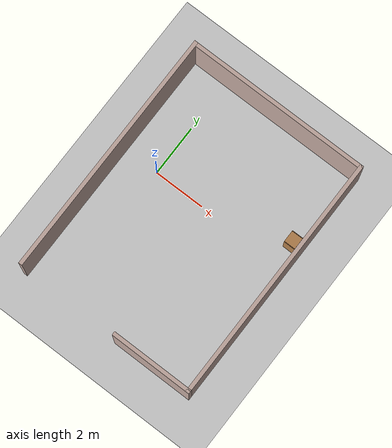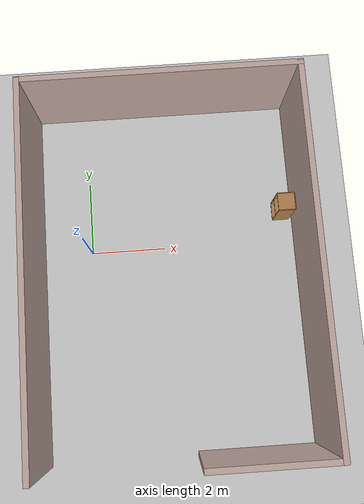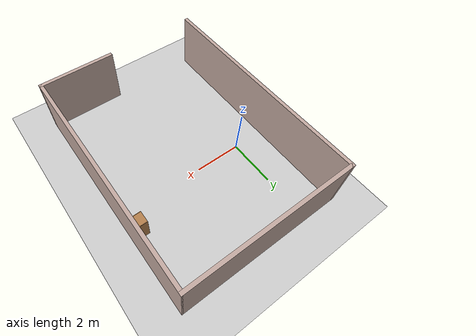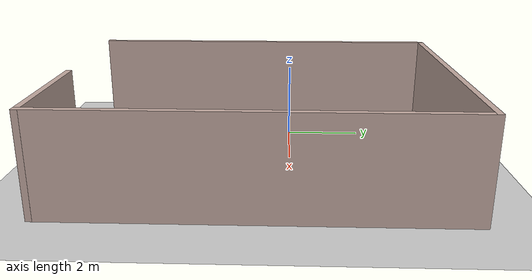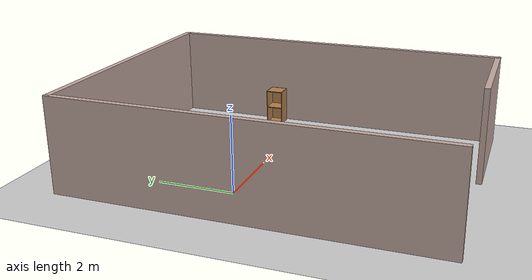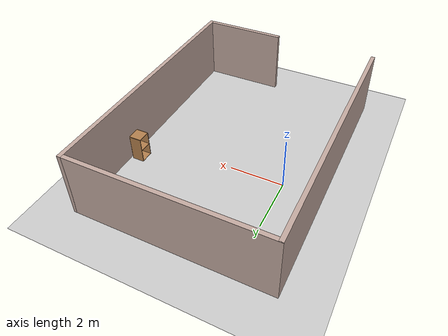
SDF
<sdf version="1.7">
 <world name="default">
  <light name="sun" type="directional">
   <pose>0 0 10 0 -0 0</pose>
   <diffuse>0.8 0.8 0.8 1</diffuse>
   <specular>0.2 0.2 0.2 1</specular>
   <attenuation>
    <range>1000</range>
    <constant>0.9</constant>
    <linear>0.01</linear>
    <quadratic>0.001</quadratic>
   </attenuation>
   <direction>-0.5 0.1 -0.9</direction>
   <spot><inner_angle>0</inner_angle><outer_angle>0</outer_angle><falloff>0</falloff></spot>
  </light>
  <model name="ground_plane">
   <static>1</static>
   <link name="link">
    <collision name="collision">
     <geometry><plane><normal>0 0 1</normal><size>100 100</size></plane></geometry>
     <surface>
      <contact><collide_bitmask>65535</collide_bitmask></contact>
      <friction><ode><mu>100</mu><mu2>50</mu2></ode></friction>
     </surface>
    </collision>
    <visual name="visual">
     <cast_shadows>0</cast_shadows>
     <geometry><plane><normal>0 0 1</normal><size>100 100</size></plane></geometry>
     <material>
      <script><uri>file://media/materials/scripts/gazebo.material</uri><name>Gazebo/Grey</name></script>
     </material>
    </visual>
   </link>
  </model>
  <gravity>0 0 -9.8</gravity>
  <magnetic_field>6e-06 2.3e-05 -4.2e-05</magnetic_field>
  <atmosphere type="adiabatic"/>
  <physics type="ode">
   <max_step_size>0.001</max_step_size>
   <real_time_factor>1</real_time_factor>
   <real_time_update_rate>500</real_time_update_rate>
  </physics>
  <scene><ambient>0.4 0.4 0.4 1</ambient><background>0.7 0.7 0.7 1</background><shadows>1</shadows></scene>
  <audio><device>default</device></audio>
  <spherical_coordinates>
   <surface_model>EARTH_WGS84</surface_model>
   <latitude_deg>0</latitude_deg>
   <longitude_deg>0</longitude_deg>
   <elevation>0</elevation>
   <heading_deg>0</heading_deg>
  </spherical_coordinates>
  <model name="Untitled">
   <pose>2.15235 -0.777333 0 0 -0 0</pose>
   <link name="Wall_5">
    <collision name="Wall_5_Collision">
     <geometry><box><size>9.75 0.15 2.5</size></box></geometry>
     <pose>0 0 1.25 0 -0 0</pose>
    </collision>
    <visual name="Wall_5_Visual">
     <pose>0 0 1.25 0 -0 0</pose>
     <geometry><box><size>9.75 0.15 2.5</size></box></geometry>
     <material>
      <script><uri>file://media/materials/scripts/gazebo.material</uri><name>Gazebo/Grey</name></script>
      <ambient>0.760784 0.662745 0.627451 1</ambient>
     </material>
     <meta><layer>0</layer></meta>
    </visual>
    <pose>-3.55 -0 0 0 -0 1.5708</pose>
   </link>
   <link name="Wall_7">
    <collision name="Wall_7_Collision">
     <geometry><box><size>7.25 0.15 2.5</size></box></geometry>
     <pose>0 0 1.25 0 -0 0</pose>
    </collision>
    <visual name="Wall_7_Visual">
     <pose>0 0 1.25 0 -0 0</pose>
     <geometry><box><size>7.25 0.15 2.5</size></box></geometry>
     <material>
      <script><uri>file://media/materials/scripts/gazebo.material</uri><name>Gazebo/Grey</name></script>
      <ambient>0.760784 0.662745 0.627451 1</ambient>
     </material>
     <meta><layer>0</layer></meta>
    </visual>
    <pose>-0 4.8 0 0 -0 0</pose>
   </link>
   <link name="Wall_8">
    <collision name="Wall_8_Collision">
     <geometry><box><size>9.75 0.15 2.5</size></box></geometry>
     <pose>0 0 1.25 0 -0 0</pose>
    </collision>
    <visual name="Wall_8_Visual">
     <pose>0 0 1.25 0 -0 0</pose>
     <geometry><box><size>9.75 0.15 2.5</size></box></geometry>
     <material>
      <script><uri>file://media/materials/scripts/gazebo.material</uri><name>Gazebo/Grey</name></script>
      <ambient>0.760784 0.662745 0.627451 1</ambient>
     </material>
     <meta><layer>0</layer></meta>
    </visual>
    <pose>3.55 -0 0 0 -0 -1.5708</pose>
   </link>
   <link name="Wall_9">
    <collision name="Wall_9_Collision">
     <geometry><box><size>3.25 0.15 2.5</size></box></geometry>
     <pose>0 0 1.25 0 -0 0</pose>
    </collision>
    <visual name="Wall_9_Visual">
     <pose>0 0 1.25 0 -0 0</pose>
     <geometry><box><size>3.25 0.15 2.5</size></box></geometry>
     <material>
      <script><uri>file://media/materials/scripts/gazebo.material</uri><name>Gazebo/Grey</name></script>
      <ambient>0.760784 0.662745 0.627451 1</ambient>
     </material>
     <meta><layer>0</layer></meta>
    </visual>
    <pose>2 -4.8 0 0 -0 3.14159</pose>
   </link>
   <static>1</static>
  </model>
  <model name="cabinet">
   <static>1</static>
   <link name="cabinet_bottom_plate">
    <inertial>
     <pose>0 0 -1 0 -0 0</pose>
     <inertia><ixx>2.05</ixx><ixy>0</ixy><ixz>0</ixz><iyy>2.05</iyy><iyz>0</iyz><izz>2.05</izz></inertia>
     <mass>25</mass>
    </inertial>
    <collision name="cabinet_bottom_plate_geom">
     <pose>0 0 0.01 0 -0 0</pose>
     <geometry><box><size>0.45 0.45 0.02</size></box></geometry>
    </collision>
    <visual name="cabinet_bottom_plate_geom_visual">
     <pose>0 0 0.01 0 -0 0</pose>
     <geometry><box><size>0.45 0.45 0.02</size></box></geometry>
     <material>
      <script><uri>file://media/materials/scripts/gazebo.material</uri><name>Gazebo/Wood</name></script>
     </material>
    </visual>
    <collision name="cabinet_bottom_plate_geom_cabinet_back_plate">
     <pose>0.235 0 0.51 0 -0 0</pose>
     <geometry><box><size>0.02 0.45 1.02</size></box></geometry>
    </collision>
    <visual name="cabinet_bottom_plate_geom_cabinet_back_plate_visual">
     <pose>0.235 0 0.51 0 -0 0</pose>
     <geometry><box><size>0.02 0.45 1.02</size></box></geometry>
     <material>
      <script><uri>file://media/materials/scripts/gazebo.material</uri><name>Gazebo/Wood</name></script>
     </material>
    </visual>
    <collision name="cabinet_bottom_plate_geom_cabinet_left_plate">
     <pose>0 0.235 0.51 0 -0 0</pose>
     <geometry><box><size>0.45 0.02 1.02</size></box></geometry>
    </collision>
    <visual name="cabinet_bottom_plate_geom_cabinet_left_plate_visual">
     <pose>0 0.235 0.51 0 -0 0</pose>
     <geometry><box><size>0.45 0.02 1.02</size></box></geometry>
     <material>
      <script><uri>file://media/materials/scripts/gazebo.material</uri><name>Gazebo/Wood</name></script>
     </material>
    </visual>
    <collision name="cabinet_bottom_plate_geom_cabinet_middle_plate">
     <pose>0 0 0.51 0 -0 0</pose>
     <geometry><box><size>0.45 0.45 0.02</size></box></geometry>
    </collision>
    <visual name="cabinet_bottom_plate_geom_cabinet_middle_plate_visual">
     <pose>0 0 0.51 0 -0 0</pose>
     <geometry><box><size>0.45 0.45 0.02</size></box></geometry>
     <material>
      <script><uri>file://media/materials/scripts/gazebo.material</uri><name>Gazebo/Wood</name></script>
     </material>
    </visual>
    <collision name="cabinet_bottom_plate_geom_cabinet_right_plate">
     <pose>0 -0.235 0.51 0 -0 0</pose>
     <geometry><box><size>0.45 0.02 1.02</size></box></geometry>
    </collision>
    <visual name="cabinet_bottom_plate_geom_cabinet_right_plate_visual">
     <pose>0 -0.235 0.51 0 -0 0</pose>
     <geometry><box><size>0.45 0.02 1.02</size></box></geometry>
     <material>
      <script><uri>file://media/materials/scripts/gazebo.material</uri><name>Gazebo/Wood</name></script>
     </material>
    </visual>
    <collision name="cabinet_bottom_plate_geom_cabinet_top_plate">
     <pose>0 0 1.01 0 -0 0</pose>
     <geometry><box><size>0.45 0.45 0.02</size></box></geometry>
    </collision>
    <visual name="cabinet_bottom_plate_geom_cabinet_top_plate_visual">
     <pose>0 0 1.01 0 -0 0</pose>
     <geometry><box><size>0.45 0.45 0.02</size></box></geometry>
     <material>
      <script><uri>file://media/materials/scripts/gazebo.material</uri><name>Gazebo/Wood</name></script>
     </material>
    </visual>
   </link>
   <pose>5.31652 0.862402 0 0 -0 0</pose>
  </model>
  <light name="user_point_light_0" type="point">
   <pose>4.52747 3.18313 1 0 -0 0</pose>
   <diffuse>0.5 0.5 0.5 1</diffuse>
   <specular>0.1 0.1 0.1 1</specular>
   <attenuation>
    <range>20</range>
    <constant>0.5</constant>
    <linear>0.01</linear>
    <quadratic>0.001</quadratic>
   </attenuation>
   <cast_shadows>0</cast_shadows>
   <direction>0 0 -1</direction>
  </light>
 </world>
</sdf>
